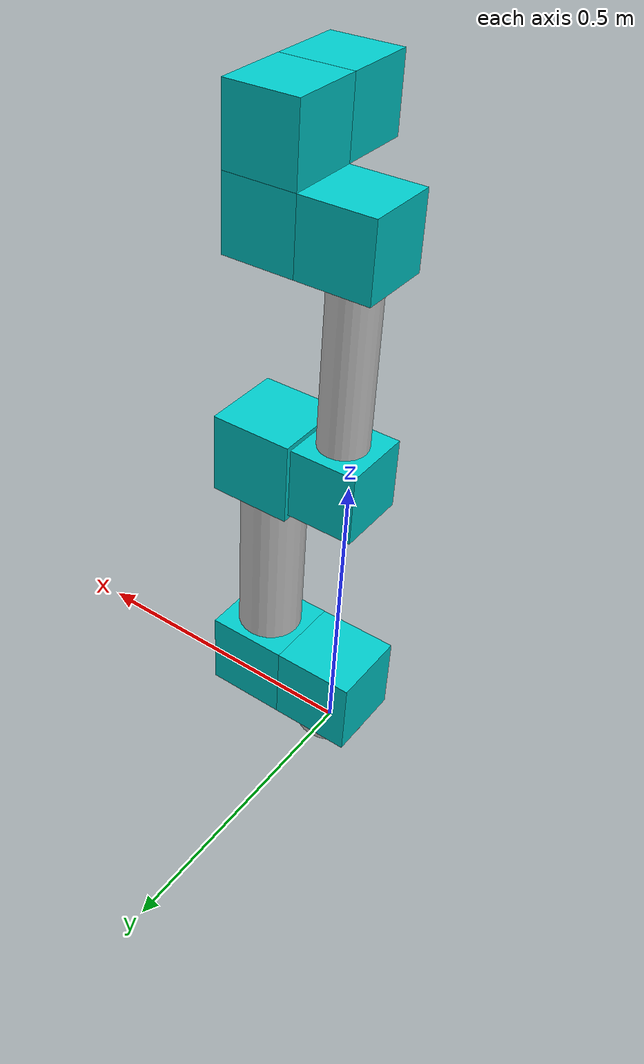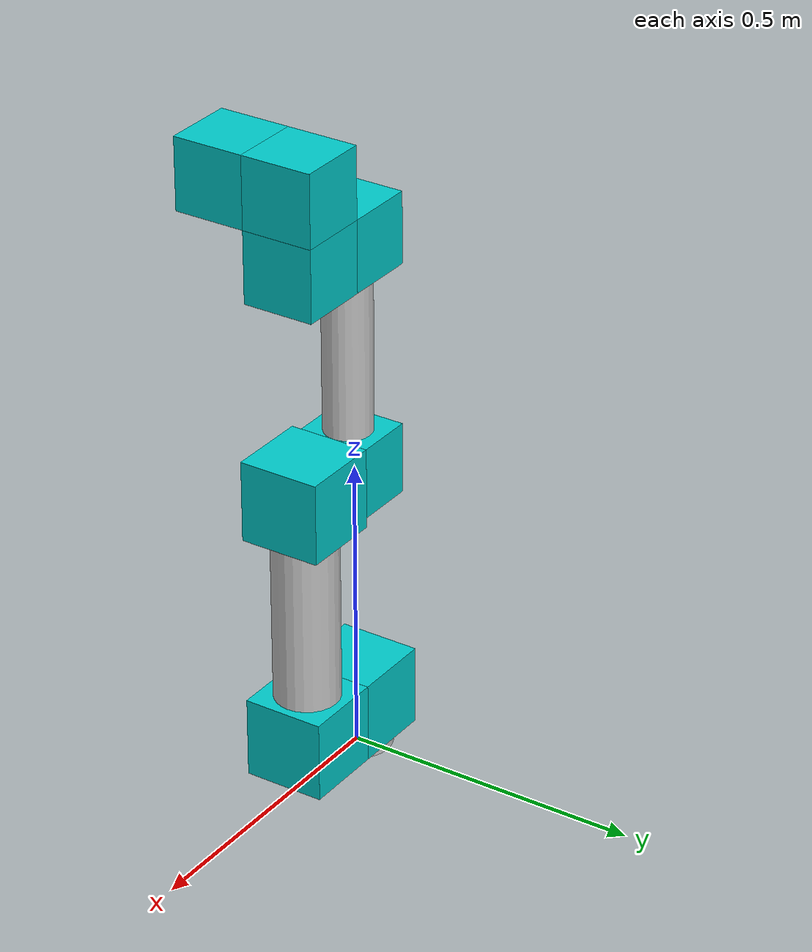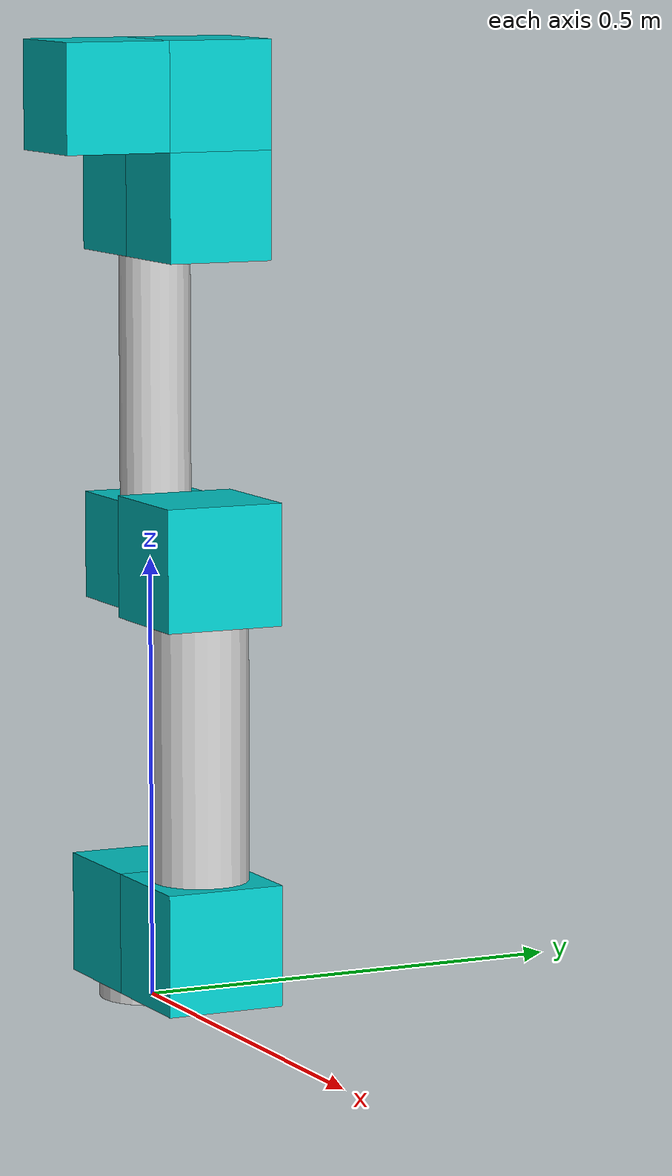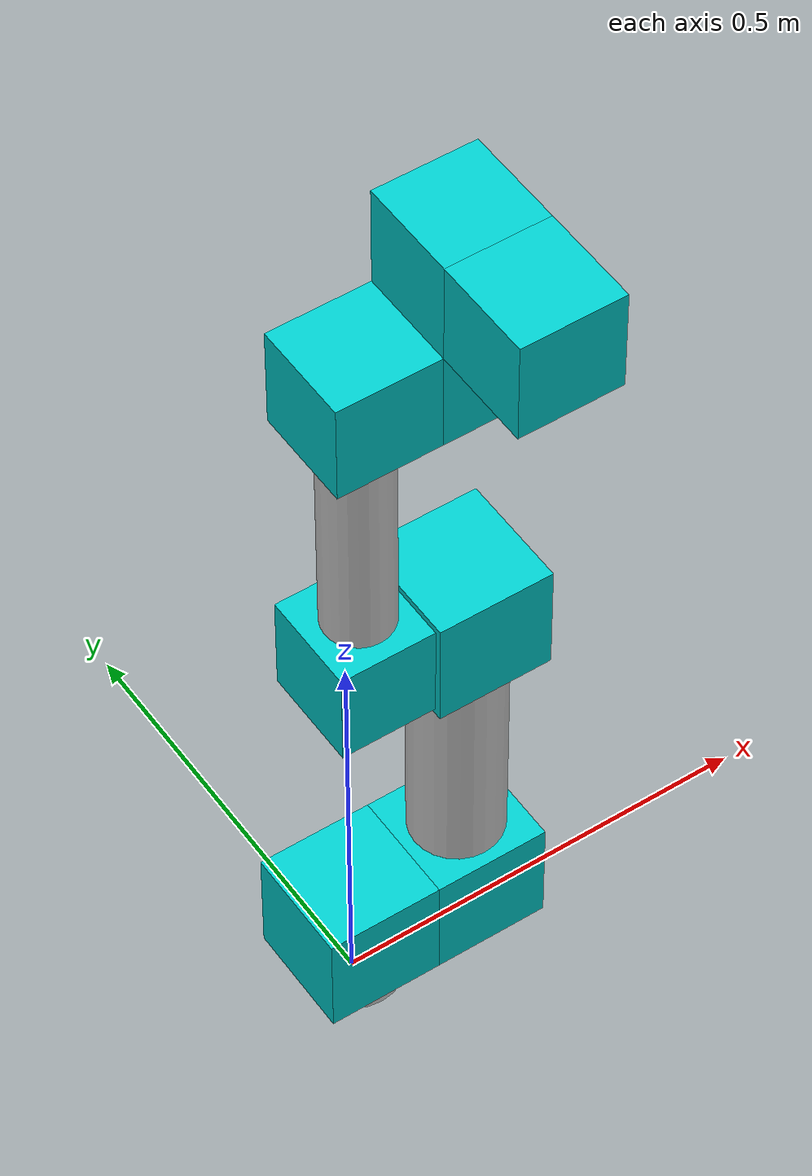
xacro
<?xml version="1.0"?>
<robot xmlns:xacro="http://ros.org/wiki/xacro" name="ur5_test" >

	<!-- Arbitrary offsets for shoulder/elbow joints -->
	<!-- shoulder_offset - elbow_offset + wrist_1_length = 0.10915 -->
	<xacro:property name="shoulder_offset" value="0.13585" />  <!-- measured from model -->
	<xacro:property name="elbow_offset" value="0.1197" /> <!-- measured from model -->

	<!-- Inertia parameters -->
	<xacro:property name="base_mass" value="4.0" />  <!-- This mass might be incorrect -->
	<xacro:property name="shoulder_mass" value="3.7000" />
	<xacro:property name="upper_arm_mass" value="8.3930" />
	<xacro:property name="forearm_mass" value="2.2750" />
	<xacro:property name="wrist_1_mass" value="1.2190" />
	<xacro:property name="wrist_2_mass" value="1.2190" />
	<xacro:property name="wrist_3_mass" value="0.1879" />

	<!-- link lengths used in model -->
	<xacro:property name="shoulder_height" value="0.089159" />
	<xacro:property name="upper_arm_length" value="0.42500" />
	<xacro:property name="forearm_length" value="0.39225" />
	<xacro:property name="wrist_1_length" value="0.093" />	<!-- CAD measured -->
	<xacro:property name="wrist_2_length" value="0.09465" />	<!-- In CAD this distance is 0.930, but in the spec it is 0.09465 -->
	<xacro:property name="wrist_3_length" value="0.0823" />

	<xacro:property name="shoulder_radius" value="0.060" />   <!-- manually measured -->
	<xacro:property name="upper_arm_radius" value="0.054" />  <!-- manually measured -->
	<xacro:property name="elbow_radius" value="0.060" />      <!-- manually measured -->
	<xacro:property name="forearm_radius" value="0.040" />    <!-- manually measured -->
	<xacro:property name="wrist_radius" value="0.045" />      <!-- manually measured -->

	<xacro:property name="box_dim" value="0.140" />      <!-- proposed -->

	<!-- Helper macros -->
	<xacro:macro name="inertial_macro" params="radius length mass">
		<inertial>
			<mass value="${mass}" />
			<inertia ixx="${0.0833333 * mass * (3 * radius * radius + length * length)}" ixy="0.0" ixz="0.0"
				iyy="${0.0833333 * mass * (3 * radius * radius + length * length)}" iyz="0.0"
				izz="${0.5 * mass * radius * radius}" />
		</inertial>
	</xacro:macro>

	<xacro:macro name="box_visual" params="box_size *origin" >
		<visual>
			<geometry>
				<box size="${box_size} ${box_size} ${box_size}" />
			</geometry>
			<xacro:insert_block name="origin" />
			<material name="LightBlue">
				<color rgba="0.0 0.8 0.8 1.0"/>
			</material>
		</visual>
	</xacro:macro>

	<xacro:macro name="cylinder_visual" params="radius length *origin" >
		<visual>
			<geometry>
				<cylinder length="${length}" radius="${radius}"/>
			</geometry>
			<xacro:insert_block name="origin" />
			<material name="Gray">
				<color rgba="0.8 0.8 0.8 1.0"/>
			</material>
		</visual>
	</xacro:macro>

	<!-- Macro for links -->
	<!-- Generic link -->
	<xacro:macro name="cylinder_link" params="name radius length box_size mass">
		<link name="${name}">

			<xacro:inertial_macro radius="${radius}" length="${length}" mass="${mass}"/>

			<xacro:box_visual box_size="${box_size}">
				<origin xyz="0 0 ${length}" rpy="0 0 0"/>
			</xacro:box_visual>

			<xacro:cylinder_visual radius="${radius}" length="${length}">
				<origin xyz="0 0 ${length/2}" rpy="0 0 0"/>
			</xacro:cylinder_visual>

			<xacro:box_visual box_size="${box_size}">
				<origin xyz="0 0 0" rpy="0 0 0"/>
			</xacro:box_visual>

		</link>
	</xacro:macro>

	<!-- Base -->
	<xacro:macro name="single_link" params="name radius length box_size mass">
		<link name="${name}">

			<xacro:inertial_macro radius="${radius}" length="${length}" mass="${mass}"/>

			<xacro:cylinder_visual radius="${radius}" length="${length}">
				<origin xyz="0 0 ${length/2}" rpy="0 0 0"/>
			</xacro:cylinder_visual>

			<xacro:box_visual box_size="${box_size}">
				<origin xyz="0 0 ${length}" rpy="0 0 0"/>
			</xacro:box_visual>

		</link>
	</xacro:macro>

	<!-- Wrist -->
	<xacro:macro name="wrist_link" params="name radius length box_size mass">
		<link name="${name}">

			<xacro:inertial_macro radius="${radius}" length="${length}" mass="${mass}"/>

			<xacro:box_visual box_size="${box_size}">
				<origin xyz="0 0 0" rpy="0 0 0"/>
			</xacro:box_visual>

		</link>
	</xacro:macro>

	<!-- Macro for joints -->
	<xacro:macro name="ur_joint" params="name parent child *origin *axis">
		<joint name="${name}" type="revolute">
			<xacro:insert_block name="origin" />
			<xacro:insert_block name="axis" />
			<limit lower="-3.1416" upper="3.1416" effort="150" velocity="3.1416" />
			<child link="${child}" />
			<parent link="${parent}" />
		</joint>
	</xacro:macro>

	<!-- Links -->
	<link name="base_link"/>
	<xacro:single_link name="square_base" radius="${shoulder_radius}" length="${shoulder_height}" box_size="${shoulder_offset}"
		mass = "${shoulder_mass}"/>
	<xacro:cylinder_link name="upper_arm_link" radius="${upper_arm_radius}" length="${upper_arm_length}" box_size="${shoulder_offset}"
		mass = "${upper_arm_mass}"/>
	<xacro:cylinder_link name="forearm_link" radius="${forearm_radius}" length="${forearm_length}" box_size="${elbow_offset}"
		mass = "${forearm_mass}"/>
	<xacro:wrist_link name="wrist_1_link" radius="${wrist_radius}" length="${wrist_1_length}" box_size="${elbow_offset}"
		mass = "${wrist_1_mass}"/>
	<xacro:wrist_link name="wrist_2_link" radius="${wrist_radius}" length="${wrist_2_length}" box_size="${elbow_offset}"
		mass = "${wrist_2_mass}"/>
	<xacro:wrist_link name="wrist_3_link" radius="${wrist_radius}" length="${wrist_3_length}" box_size="${elbow_offset}"
		mass = "${wrist_3_mass}"/>

	<!-- Joints -->
	<xacro:ur_joint name="base" parent="base_link" child="square_base">
		<origin xyz="0 0 0" rpy="0 0 0"/>
		<axis xyz="0 0 1"/>
	</xacro:ur_joint>

	<xacro:ur_joint name="shoulder" parent="square_base" child="upper_arm_link">
		<origin xyz="${shoulder_offset} 0 ${shoulder_height}" rpy="0 0 0"/>
		<axis xyz="1 0 0"/>
	</xacro:ur_joint>

	<xacro:ur_joint name="elbow" parent="upper_arm_link" child="forearm_link">
		<origin xyz="${-elbow_offset} 0 ${upper_arm_length}" rpy="0 0 0"/>
		<axis xyz="1 0 0"/>
	</xacro:ur_joint>

	<xacro:ur_joint name="wrist_1" parent="forearm_link" child="wrist_1_link">
		<origin xyz="${elbow_offset} 0 ${forearm_length}" rpy="0 0 0"/>
		<axis xyz="1 0 0"/>
	</xacro:ur_joint>

	<xacro:ur_joint name="wrist_2" parent="wrist_1_link" child="wrist_2_link">
		<origin xyz="0 0 ${elbow_offset}" rpy="0 0 0"/>
		<axis xyz="0 0 1"/>
	</xacro:ur_joint>

	<xacro:ur_joint name="wrist_3" parent="wrist_2_link" child="wrist_3_link">
		<origin xyz="0 ${-elbow_offset} 0" rpy="0 0 0"/>
		<axis xyz="0 1 0"/>
	</xacro:ur_joint>

</robot>
